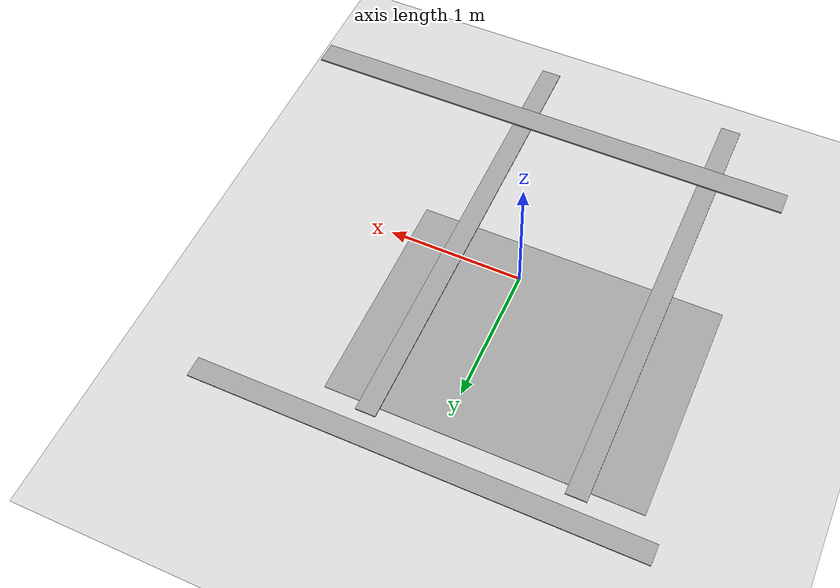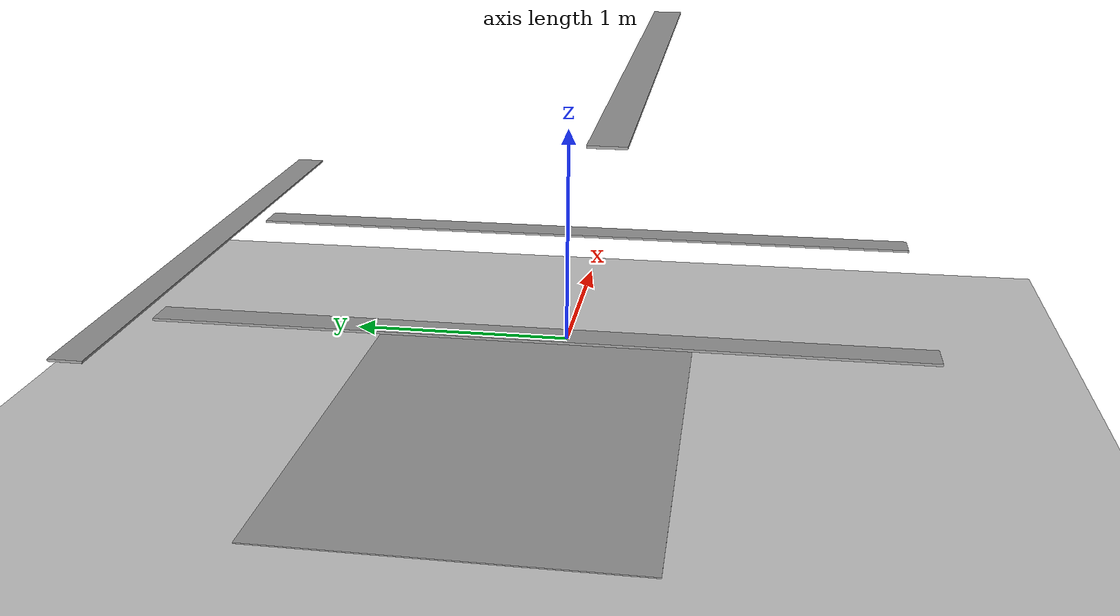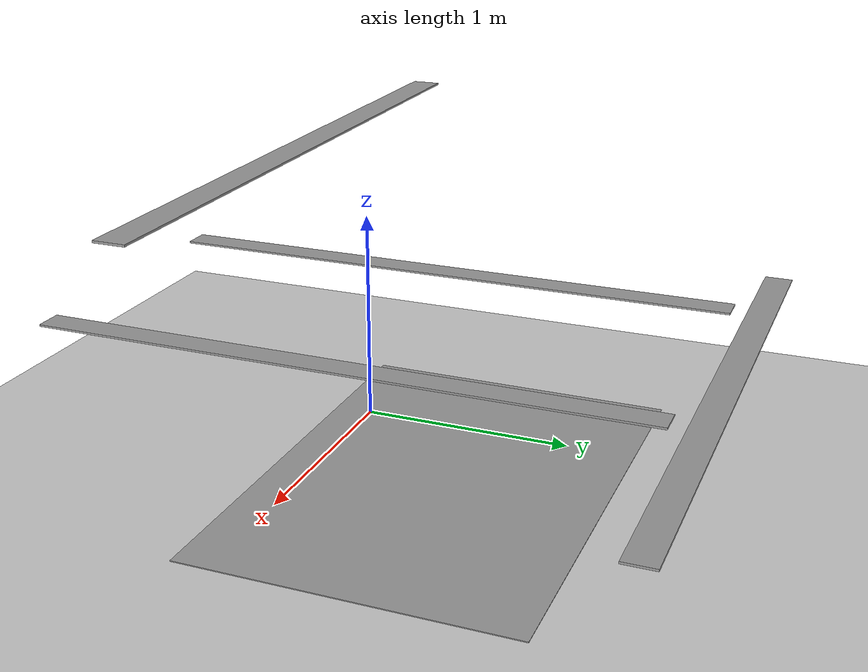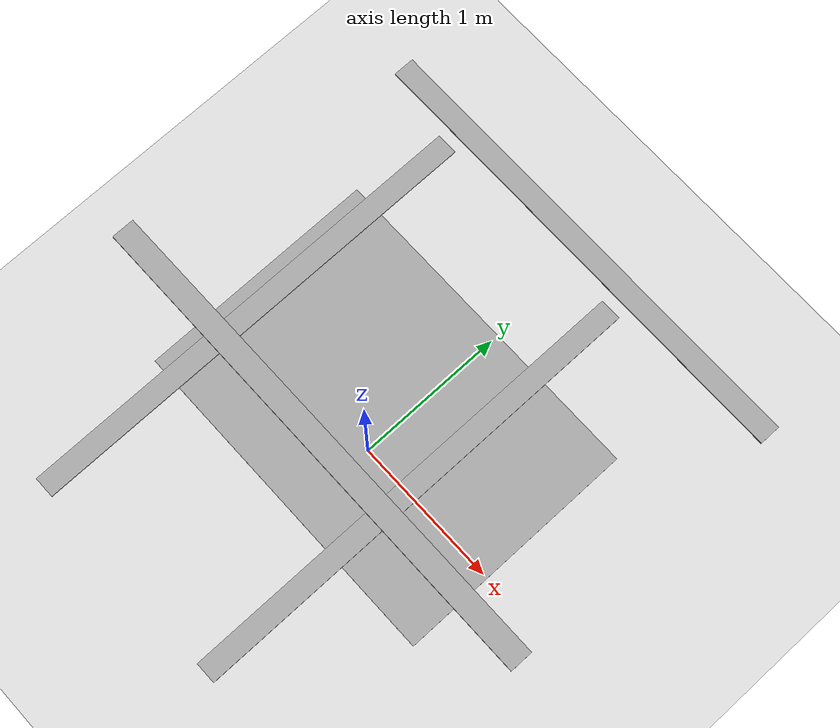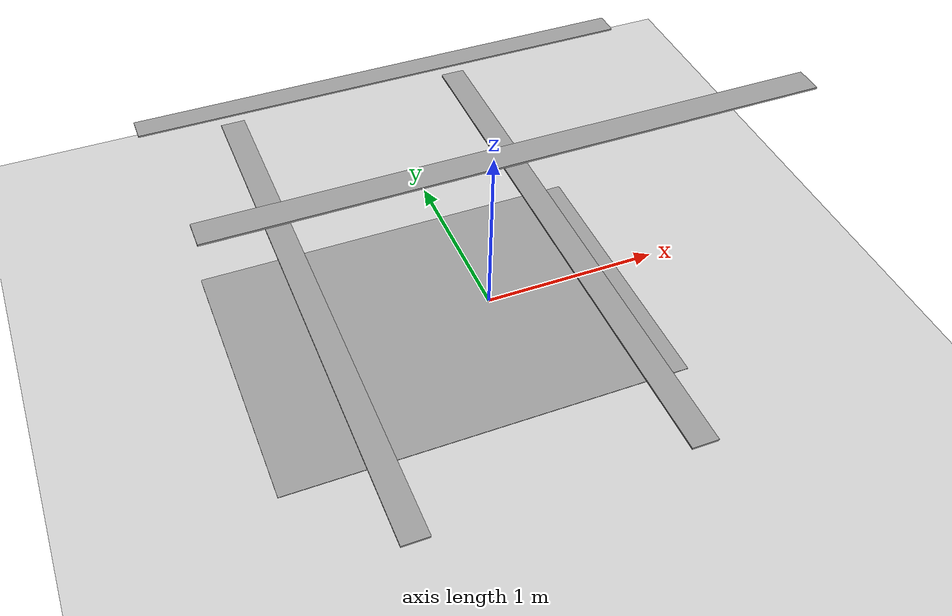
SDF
<sdf version="1.7">
 <world name="default">
  <light name="sun" type="directional">
   <pose>0 0 10 0 -0 0</pose>
   <diffuse>0.8 0.8 0.8 1</diffuse>
   <specular>0.2 0.2 0.2 1</specular>
   <attenuation>
    <range>1000</range>
    <constant>0.9</constant>
    <linear>0.01</linear>
    <quadratic>0.001</quadratic>
   </attenuation>
   <direction>-0.5 0.1 -0.9</direction>
   <spot><inner_angle>0</inner_angle><outer_angle>0</outer_angle><falloff>0</falloff></spot>
  </light>
  <physics name="ode" type="ode">
   <ode>
    <constraints>
     <contact_max_correcting_vel>0</contact_max_correcting_vel>
     <cfm>0</cfm>
     <erp>0.2</erp>
     <contact_surface_layer>0.001</contact_surface_layer>
    </constraints>
    <solver>
     <type>quick</type>
     <iters>50</iters>
     <sor>1.3</sor>
     <use_dynamic_moi_rescaling>0</use_dynamic_moi_rescaling>
    </solver>
   </ode>
   <max_step_size>0.001</max_step_size>
   <real_time_update_rate>1000</real_time_update_rate>
   <real_time_factor>1</real_time_factor>
  </physics>
  <plugin name="stepping_plugin" filename="libstepping_plugin.so"/>
  <model name="moveit_plugin_model">
   <plugin name="gazebo_ros_moveit_planning_scene" filename="libgazebo_ros_moveit_planning_scene.so">
    <robotName>hdt_michigan</robotName>
    <robotNamespace>hdt_michigan</robotNamespace>
    <frameId>hdt_michigan_root</frameId>
   </plugin>
  </model>
  <model name="ground_plane">
   <static>1</static>
   <link name="link">
    <collision name="collision">
     <geometry><plane><normal>0 0 1</normal><size>100 100</size></plane></geometry>
    </collision>
    <visual name="visual">
     <cast_shadows>0</cast_shadows>
     <geometry><plane><normal>0 0 1</normal><size>100 100</size></plane></geometry>
     <material>
      <script><uri>file://media/materials/scripts/gazebo.material</uri><name>Gazebo/Grey</name></script>
     </material>
    </visual>
   </link>
   <pose>0 0 -0.42 0 -0 0</pose>
  </model>
  <model name="fake_wall1">
   <link name="link">
    <inertial>
     <mass>1</mass>
     <inertia>
      <ixx>0.166667</ixx>
      <ixy>0</ixy>
      <ixz>0</ixz>
      <iyy>0.166667</iyy>
      <iyz>0</iyz>
      <izz>0.166667</izz>
     </inertia>
    </inertial>
    <kinematic>1</kinematic>
    <visual name="visual">
     <geometry><box><size>3.10724 0.140567 0.01</size></box></geometry>
     <material>
      <script><name>Gazebo/Grey</name><uri>file://media/materials/scripts/gazebo.material</uri></script>
      <shader type="pixel"/>
     </material>
     <cast_shadows>0</cast_shadows>
    </visual>
    <collision name="collision"><geometry><box><size>3.10724 0.140567 1.89855</size></box></geometry></collision>
   </link>
   <static>0</static>
   <pose>0 -0.33 1.3 0 -0 0</pose>
  </model>
  <model name="fake_wall2">
   <link name="link">
    <kinematic>1</kinematic>
    <visual name="visual">
     <geometry><box><size>3.10724 0.140567 0.01</size></box></geometry>
     <material>
      <script><name>Gazebo/Grey</name><uri>file://media/materials/scripts/gazebo.material</uri></script>
      <shader type="pixel"/>
     </material>
     <cast_shadows>0</cast_shadows>
    </visual>
    <collision name="collision"><geometry><box><size>3.10724 0.140567 1.89855</size></box></geometry></collision>
   </link>
   <static>0</static>
   <pose>0 1.7 0.4 0 -0 0</pose>
  </model>
  <model name="fake_wall3">
   <link name="link">
    <inertial>
     <mass>1</mass>
     <inertia>
      <ixx>0.166667</ixx>
      <ixy>0</ixy>
      <ixz>0</ixz>
      <iyy>0.166667</iyy>
      <iyz>0</iyz>
      <izz>0.166667</izz>
     </inertia>
    </inertial>
    <kinematic>1</kinematic>
    <visual name="visual">
     <geometry><box><size>3.10724 0.140567 0.01</size></box></geometry>
     <material>
      <script><name>Gazebo/Grey</name><uri>file://media/materials/scripts/gazebo.material</uri></script>
      <shader type="pixel"/>
     </material>
     <cast_shadows>0</cast_shadows>
    </visual>
    <collision name="collision"><geometry><box><size>3.10724 0.140567 1.89855</size></box></geometry></collision>
   </link>
   <static>0</static>
   <pose>-1.005 0 0.4 0 -0 1.5707</pose>
  </model>
  <model name="fake_wall4">
   <link name="link">
    <kinematic>1</kinematic>
    <visual name="visual">
     <geometry><box><size>3.10724 0.140567 0.01</size></box></geometry>
     <material>
      <script><name>Gazebo/Grey</name><uri>file://media/materials/scripts/gazebo.material</uri></script>
      <shader type="pixel"/>
     </material>
     <cast_shadows>0</cast_shadows>
    </visual>
    <collision name="collision"><geometry><box><size>3.10724 0.140567 1.89855</size></box></geometry></collision>
   </link>
   <static>0</static>
   <pose>0.4 0 0.4 0 -0 1.5707</pose>
  </model>
  <model name="unit_box">
   <pose>-0.2 0.3 -0.4 0 -0 0</pose>
   <link name="link">
    <kinematic>1</kinematic>
    <collision name="collision"><geometry><box><size>2.4 1.7 0.015</size></box></geometry></collision>
    <visual name="visual">
     <geometry><box><size>2.4 1.7 0.005</size></box></geometry>
     <material>
      <script><name>Gazebo/Grey</name><uri>file://media/materials/scripts/gazebo.material</uri></script>
     </material>
    </visual>
   </link>
   <static>0</static>
  </model>
 </world>
</sdf>
